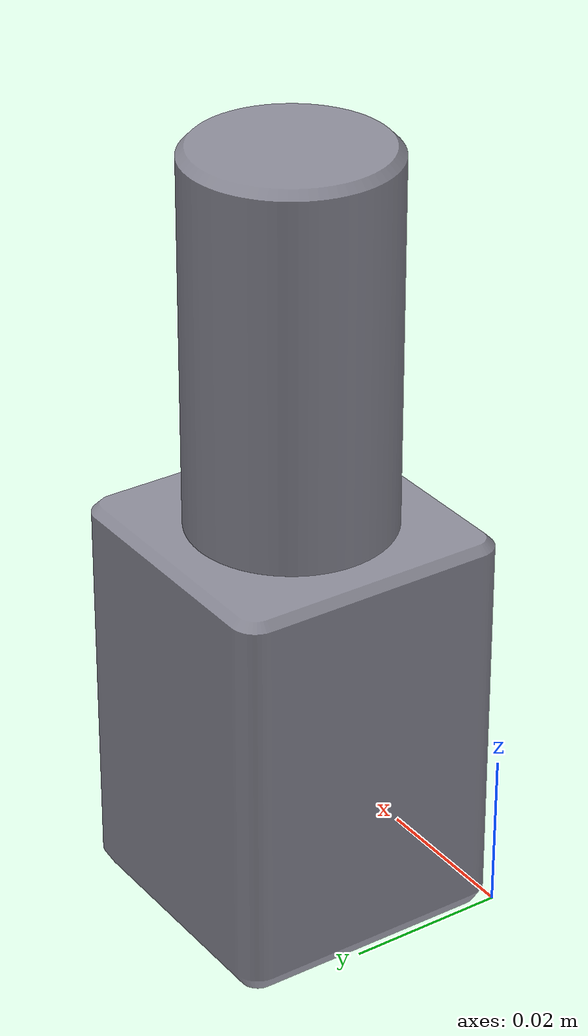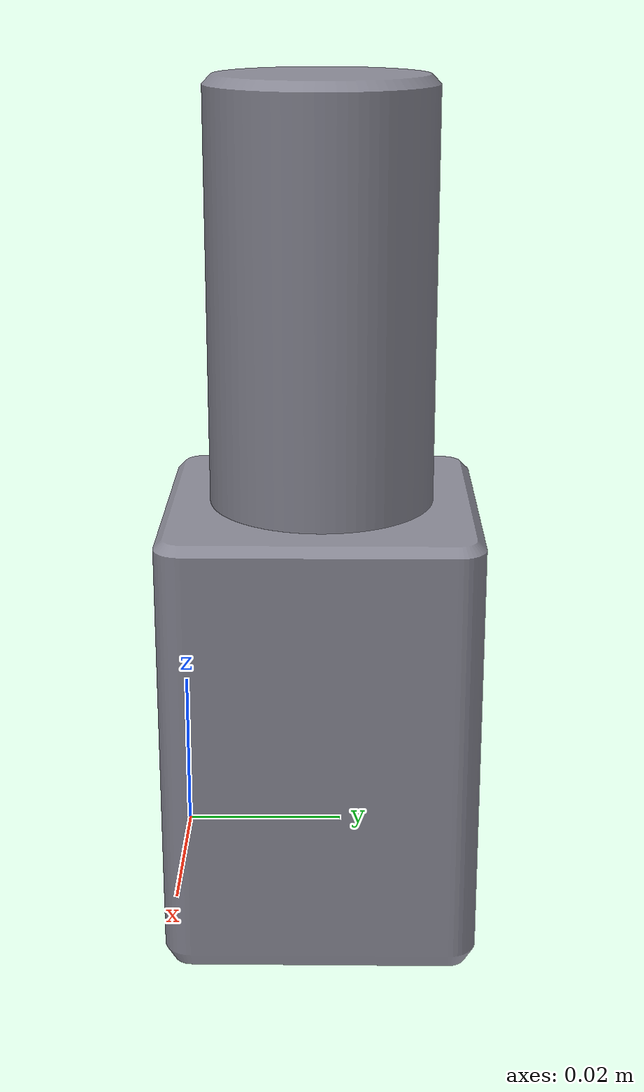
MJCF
<mujoco model="shaft2">
  <compiler angle="radian" autolimits="true" inertiafromgeom="true"
            meshdir="../assets/gearbox" texturedir="../assets/gearbox"/>

  <asset>
    <mesh name="shaft2" file="shaft2.stl" scale="1 1 1"/>
    <material name="metal_mat" rgba="0.55 0.55 0.60 1"
              specular="0.8" shininess="0.5" reflectance="0.3"/>
  </asset>

  <worldbody>
    <body name="shaft2">
      <freejoint name="shaft2_joint"/>
      <geom name="shaft2" mesh="shaft2" type="mesh" material="metal_mat"
            condim="6" friction="0.6 0.005 0.0001"
            solimp="0.99 0.99 0.001" solref="0.01 1"/>
    </body>
  </worldbody>
</mujoco>
